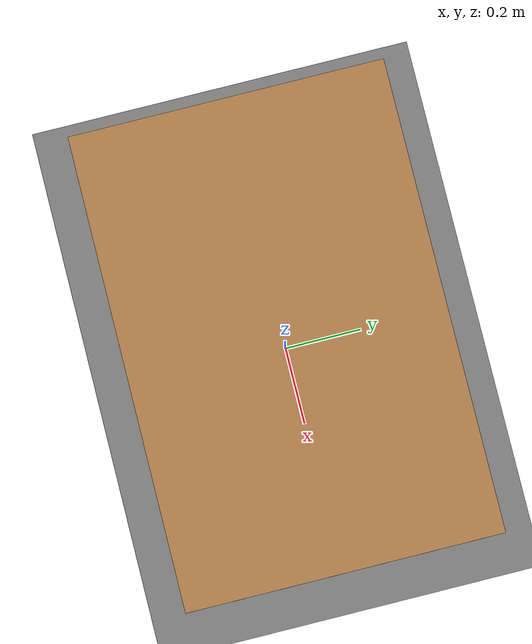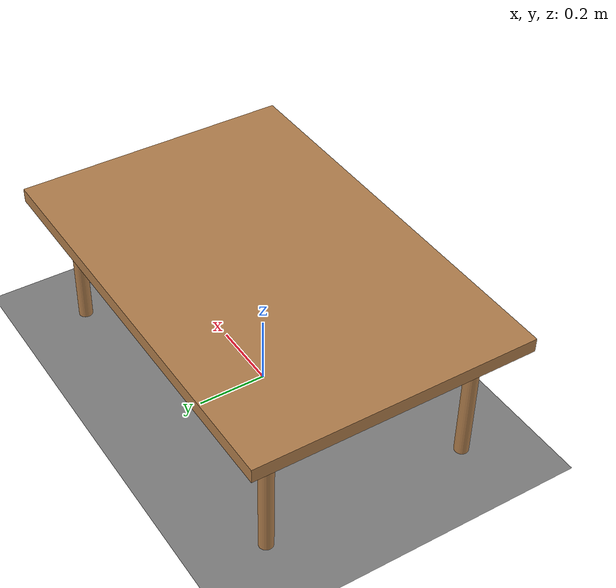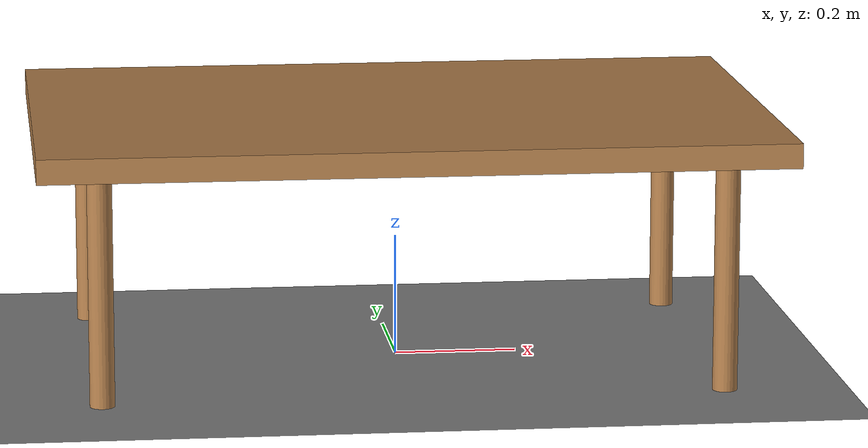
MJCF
<mujoco model="base_scene">
  <compiler angle="radian" meshdir="../../tauro_common/models/so_arm100/assets/"/>

  <option cone="elliptic" impratio="10" integrator="implicitfast"/>

  <asset>
    <!-- Ground and environment materials -->
    <material name="ground_mat" rgba="0.5 0.5 0.5 1"/>
    <material name="table_mat" rgba="0.7 0.5 0.3 1"/>
    <material name="wall_mat" rgba="0.9 0.9 0.9 1"/>
  </asset>

  <worldbody>
    <!-- Ground plane -->
    <geom name="ground" type="plane" size="3 3 0.1" material="ground_mat"/>

    <!-- Lighting -->
    <light name="main_light" pos="0 0 3" dir="0 0 -1" diffuse="0.8 0.8 0.8" specular="0.3 0.3 0.3"/>
    <light name="ambient_light" pos="2 2 2" dir="-1 -1 -1" diffuse="0.4 0.4 0.4"/>

    <!-- Optional table (can be commented out if not needed) -->
    <body name="table" pos="0 0 0.4">
      <geom name="table_top" type="box" size="0.6 0.4 0.02" material="table_mat"/>
      <geom name="table_leg1" type="cylinder" pos="0.5 0.3 -0.2" size="0.02 0.2" material="table_mat"/>
      <geom name="table_leg2" type="cylinder" pos="-0.5 0.3 -0.2" size="0.02 0.2" material="table_mat"/>
      <geom name="table_leg3" type="cylinder" pos="0.5 -0.3 -0.2" size="0.02 0.2" material="table_mat"/>
      <geom name="table_leg4" type="cylinder" pos="-0.5 -0.3 -0.2" size="0.02 0.2" material="table_mat"/>
    </body>
  </worldbody>
</mujoco>
